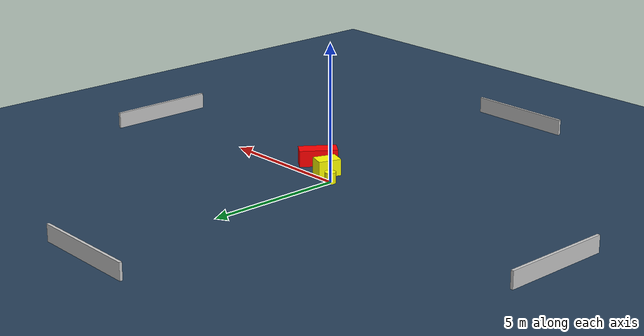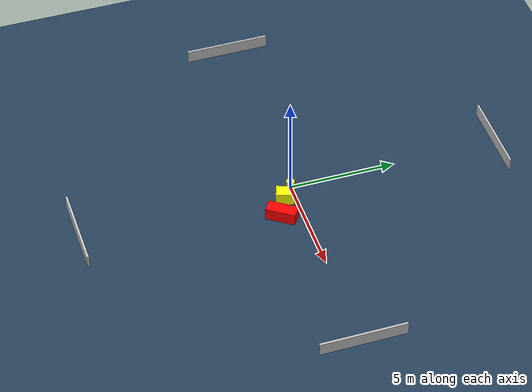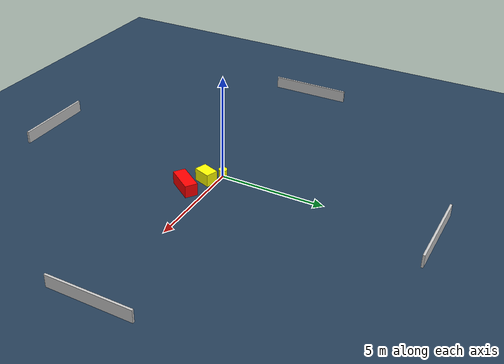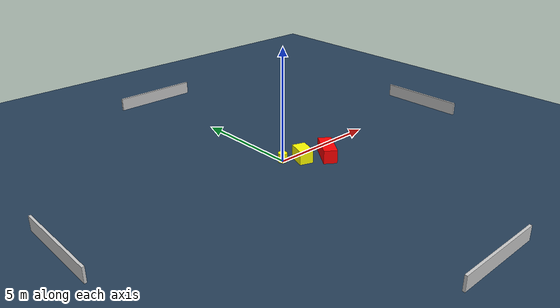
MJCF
<?xml version="1.0" ?>
<mujoco model="generated_environment">
  <option timestep="0.01" integrator="RK4" cone="elliptic"/>
  <default>
    <geom density="1"/>
  </default>
  <asset>
    <texture builtin="gradient" height="3072" name="skybox" rgb1="0.3 0.5 0.7" rgb2="0 0 0" type="skybox" width="512"/>
    <texture builtin="checker" height="300" name="groundplane" rgb1="0.2 0.3 0.4" rgb2="0.1 0.2 0.3" type="2d" width="300"/>
    <material name="groundplane" reflectance="0.2" texrepeat="5 5" texture="groundplane"/>
  </asset>
  <worldbody>
    <light dir="0 0 -1" directional="true" pos="0 0 1.5"/>
    <geom condim="3" friction="0.5 0.005 0.001" material="groundplane" name="floor" pos="0 0 0" size="0 0 0.05" type="plane"/>
    <body name="walls">
      <geom name="wall_1" condim="4" pos="-10.0 0.0 0.3" rgba="0.800000011920929 0.800000011920929 0.800000011920929 1.0" size="0.05 2.0 0.3" type="box"/>
      <geom name="wall_2" condim="4" pos="10.0 0.0 0.3" rgba="0.800000011920929 0.800000011920929 0.800000011920929 1.0" size="0.05 2.0 0.3" type="box"/>
      <geom name="wall_3" condim="4" pos="0.0 -10.0 0.3" rgba="0.800000011920929 0.800000011920929 0.800000011920929 1.0" size="2.0 0.05 0.3" type="box"/>
      <geom name="wall_4" condim="4" pos="0.0 10.0 0.3" rgba="0.800000011920929 0.800000011920929 0.800000011920929 1.0" size="2.0 0.05 0.3" type="box"/>
    </body>
    <body name="robot">
      <joint name="joint_x" type="slide" pos="0 0 0" axis="1 0 0"/>
      <joint name="joint_y" type="slide" pos="0 0 0" axis="0 1 0"/>
      <geom name="robot" type="cylinder" pos="0.0 0.0 0.2" size="0.2 0.2 0.0" mass="5.0" friction="1.0 0.005 0.0001" condim="4" rgba="1.0 1.0 0.0 1.0"/>
    </body>
    <body name="obstacle_1_movable">
      <geom name="obstacle_1_movable" condim="4" pos="0.705955671022367 -0.4823712858752593 0.3" euler="0 0 250.6613490550472" friction="0.0 0.005 0.001" rgba="1.0 1.0 0.0 1.0" size="0.41934094663634597 0.29859043965436355 0.3" type="box" mass="0.1"/>
      <joint type="free"/>
    </body>
    <body name="obstacle_2_static">
      <geom name="obstacle_2_static" condim="4" pos="1.738862617451613 -0.9724951476088044 0.3" euler="0 0 324.7717420852845" friction="0.0 0.005 0.001" rgba="1.0 0.0 0.0 1.0" size="0.29757481188058327 0.6973454099844865 0.3" type="box"/>
    </body>
  </worldbody>
  <actuator>
    <motor name="actuator_x" joint="joint_x" gear="1" ctrlrange="-1 1"/>
    <motor name="actuator_y" joint="joint_y" gear="1" ctrlrange="-1 1"/>
  </actuator>
</mujoco>
